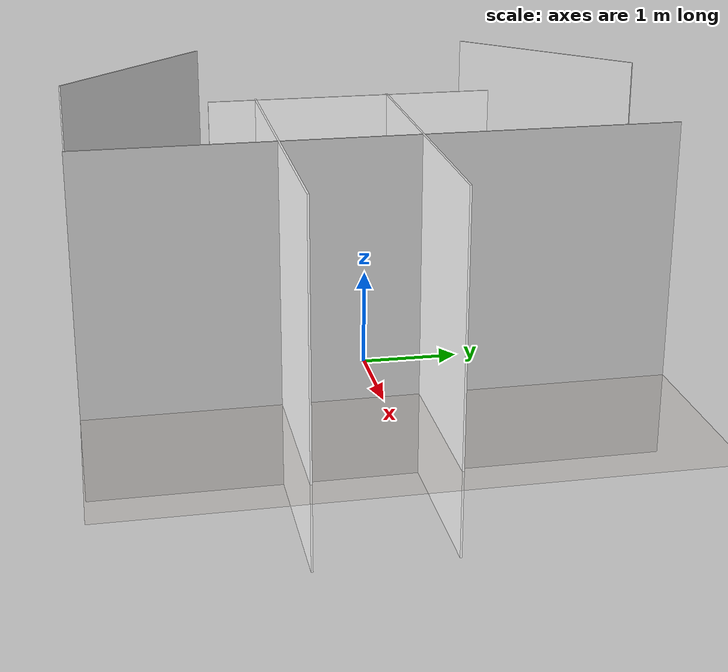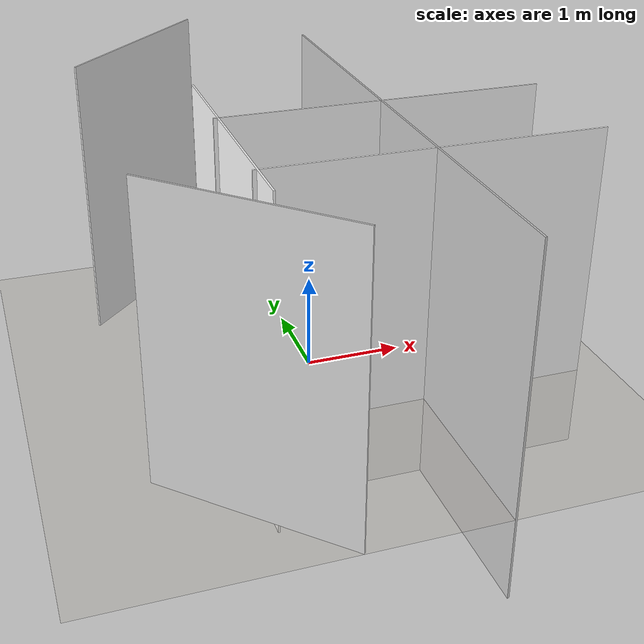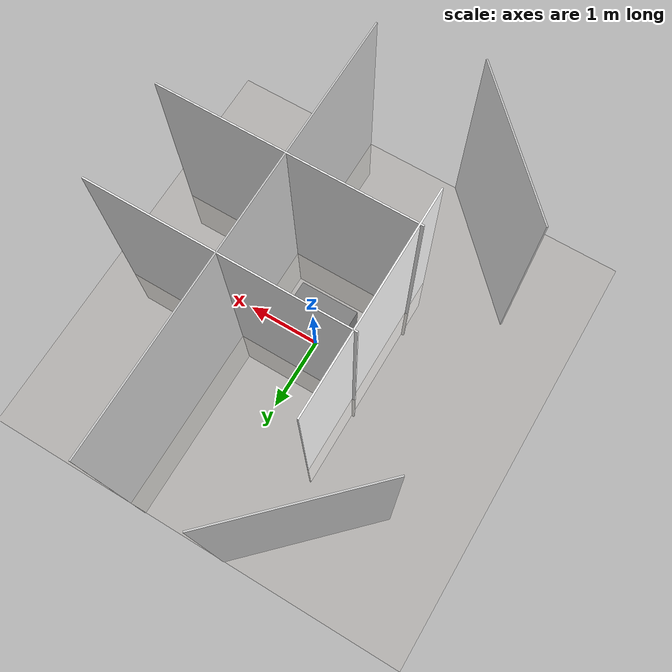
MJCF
<mujoco model="table_arena">
  <asset>
    <texture builtin="gradient" height="256" rgb1=".9 .9 1." rgb2=".2 .3 .4" type="skybox" width="256"/>
    <texture file="../textures/tile_grigia_caldera_porcelain_floor.png" type="2d" name="texplane"/>
    <material name="floorplane" reflectance="0.0" shininess="0.0"
	      specular="0.0" texrepeat="3 3" texture="texplane" texuniform="true"/>
    <!-- ceramic table texture and material-->
    <texture file="../textures/martin_novak_wood_table.png" type="cube" name="tex-table"/>
    <material name="table_texture" reflectance="0.0" shininess="0.0" specular="0.2" texrepeat="1 1" texture="tex-table" />
    <!-- steel legs -->
    <texture file="../textures/martin_novak_wood_table.png" type="cube" name="tex-table-legs"/>
    <material name="table_legs" reflectance="0.8" shininess="0.8" texrepeat="1 1" texture="tex-table-legs" />
    <!-- plaster walls -->
    <texture file="../textures/smooth_light_gray_plaster.png" type="2d" name="tex-wall"/>

    <material name="walls_mat" reflectance="0.0" shininess="0.1" specular="0.8" texrepeat="3 3" texture="tex-wall" texuniform="true" />
    <!-- added table texture and material for domain randomization -->
    <texture  name="textable" builtin="flat" height="512" width="512" rgb1="0.5 0.5 0.5" rgb2="0.5 0.5 0.5"/>
    <material name="table_mat" texture="textable" />

  </asset>
  <worldbody>
    <!-- Floor -->
    <geom condim="3" group="1" material="floorplane" name="floor" pos="0 0 0" size="3 3 .125" type="plane"/>
    <!-- Walls (visual only) -->

    <geom pos="-1.25 2.25 1.5" quat="0.6532815 0.6532815 0.2705981 0.2705981" size="1.06 1.5 0.01" type="box" conaffinity="0" contype="0" group="1" name="wall_leftcorner_visual" material="walls_mat"/>
    <geom pos="-1.25 -2.25 1.5" quat="0.6532815 0.6532815 -0.2705981 -0.2705981" size="1.06 1.5 0.01" type="box" conaffinity="0" contype="0" group="1" name="wall_rightcorner_visual" material="walls_mat"/>
    <geom pos="0.9 0.4 0.9" quat="0.7071 0.7071 0 0" size="1.75 1.8 0.01" type="box" conaffinity="0" contype="0" group="1" name="wall_left_visual" rgba="1 1 1 1"/>
    <geom pos="0.9 -1.0 0.9" quat="0.7071 -0.7071 0 0" size="1.75 1.8 0.01" type="box" conaffinity="0" contype="0" group="1" name="wall_right_visual" rgba="1 1 1 1"/>
    <geom pos="-0.8 0 0.9" quat="0.5 0.5 0.5 0.5" size="1.5 1.8 0.01" type="box" conaffinity="0" contype="0" group="1" name="wall_rear_visual" rgba="1 1 1 1"/>
    <geom pos="0.9 0 0.9" quat="0.5 0.5 -0.5 -0.5" size="3 1.8 0.01" type="box" conaffinity="0" contype="0" group="1" name="wall_front_visual" material="walls_mat"/>
    <!-- Table body -->
    <body name="table" pos="0 0 0.4">
      <geom pos="0 0 0" size="0.4 0.4 0.4" type="box" group="0" name="table_collision" friction="1 0.005 0.0001"/>
      <geom pos="0 0 0" size="0.4 0.4 0.4" type="box" conaffinity="0" contype="0" group="1" name="table_visual" material="table_texture"/>
      <site pos="0 0 0.4" name="table_top" size="0.001 0.001 0.001" rgba="0 0 0 0"/>
      <!-- Legs (visual only) -->
      <geom pos="0 0 0" size="0.05 0.1" type="cylinder" conaffinity="0" contype="0" group="1" name="table_leg1_visual" material="table_legs"/>
      <geom pos="0 0 0" size="0.05 0.1" type="cylinder" conaffinity="0" contype="0" group="1" name="table_leg2_visual" material="table_legs"/>
      <geom pos="0 0 0" size="0.05 0.1" type="cylinder" conaffinity="0" contype="0" group="1" name="table_leg3_visual" material="table_legs"/>
      <geom pos="0 0 0" size="0.05 0.1" type="cylinder" conaffinity="0" contype="0" group="1" name="table_leg4_visual" material="table_legs"/>
    </body>

    <light name="light1" diffuse="1 1 1" dir="0 0 -1" directional="false" pos="0 0 4.0" specular="0.3 0.3 0.3" castshadow="false"/>
    <light name="light2" diffuse=".8 .8 .8" dir="0 -.15 -1" directional="false" pos="-3. -3. 4.0" specular="0.3 0.3 0.3" castshadow="false"/>

    <!-- front view -->
    <camera mode="fixed" name="frontview" pos="1.0 0 1.45" quat="0.56 0.43 0.43 0.56"/>
    <!-- bird view -->
    <camera mode="fixed" name="birdview" pos="-0.2 0 3.0" quat="0.7071 0 0 0.7071"/>
    <!-- agent view -->
    <camera mode="fixed" name="agentview" pos="0.5 0 1.35" quat="0.653 0.271 0.271 0.653"/>

    <!-- side view -->
    <camera mode="fixed" name="sideview" pos="-0.05651774593317116 1.2761224129427358 1.4879572214102434" quat="0.009905065491771751 0.006877963156909582 0.5912228352893879 0.806418094001364" />
  </worldbody>
</mujoco>
